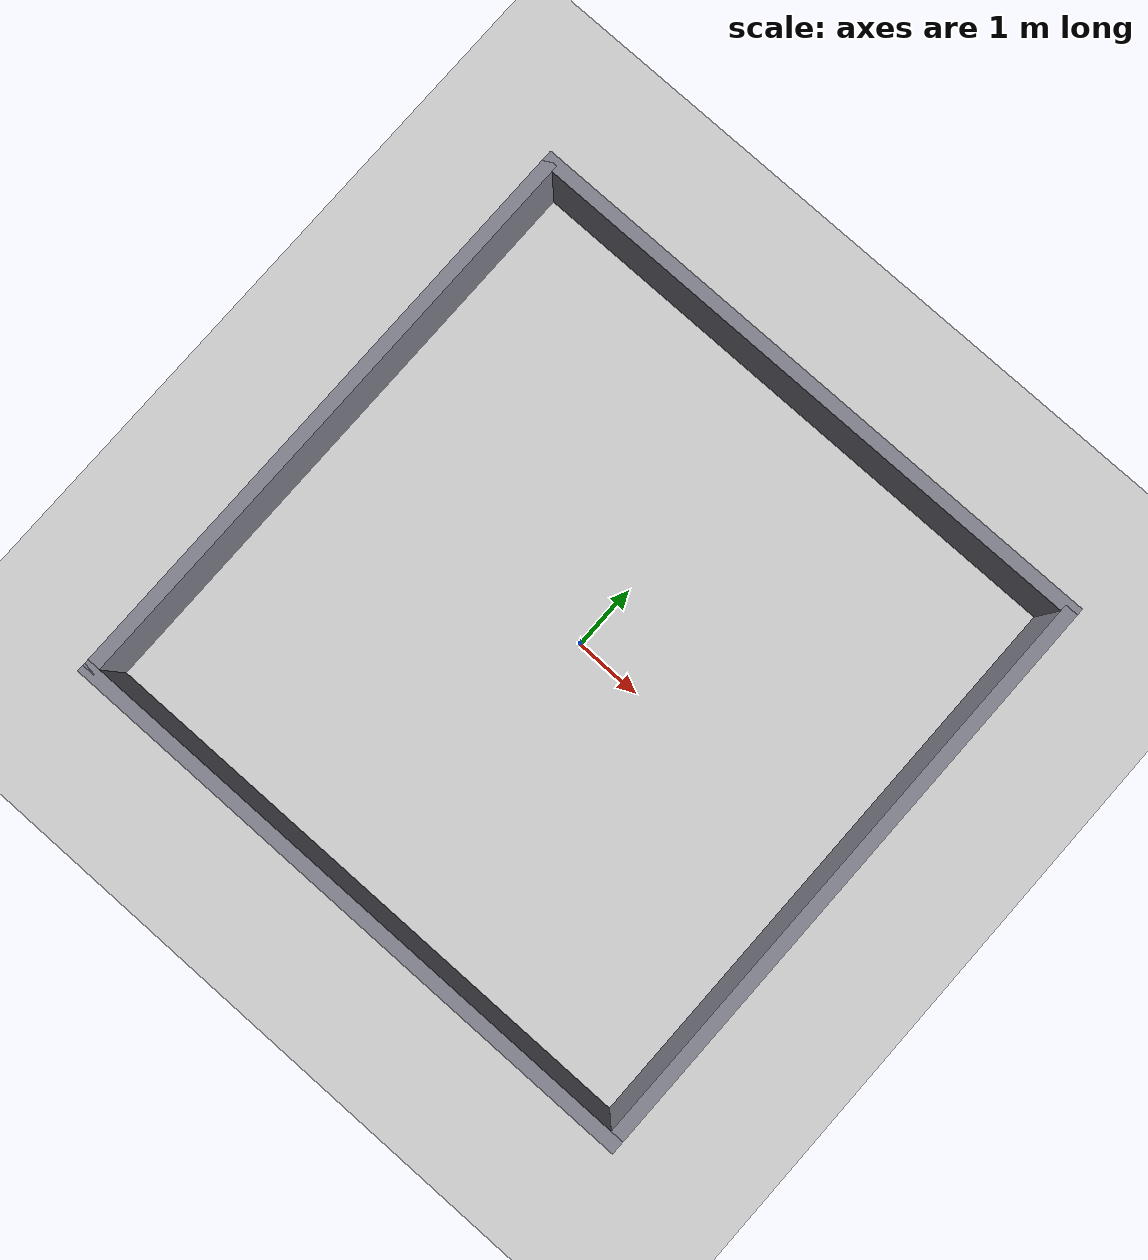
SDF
<?xml version="1.0"?>
<sdf version="1.6">
  <world name="husarion_world">
    <physics name="1ms" type="ignored">
      <max_step_size>0.001</max_step_size>
      <real_time_factor>1.0</real_time_factor>
    </physics>

    <plugin filename="gz-sim-physics-system" name="gz::sim::systems::Physics" />
    <plugin filename="gz-sim-user-commands-system" name="gz::sim::systems::UserCommands" />
    <plugin filename="gz-sim-scene-broadcaster-system" name="gz::sim::systems::SceneBroadcaster" />
    <plugin filename="gz-sim-contact-system" name="gz::sim::systems::Contact" />
    <plugin filename="gz-sim-imu-system" name="gz::sim::systems::Imu" />
    <plugin filename="gz-sim-sensors-system" name="gz::sim::systems::Sensors">
      <render_engine>ogre2</render_engine>
    </plugin>

    <light type="directional" name="sun">
      <cast_shadows>true</cast_shadows>
      <pose>0 0 10 0 0 0</pose>
      <diffuse>0.8 0.8 0.8 1</diffuse>
      <specular>0.2 0.2 0.2 1</specular>
      <attenuation>
        <range>1000</range>
        <constant>0.9</constant>
        <linear>0.01</linear>
        <quadratic>0.001</quadratic>
      </attenuation>
      <direction>-0.5 0.1 -0.9</direction>
    </light>

    <model name="ground_plane">
      <static>true</static>
      <link name="link">
        <collision name="collision">
          <geometry>
            <plane>
              <normal>0 0 1</normal>
              <size>100 100</size>
            </plane>
          </geometry>
        </collision>
        <visual name="visual">
          <geometry>
            <plane>
              <normal>0 0 1</normal>
              <size>100 100</size>
            </plane>
          </geometry>
          <material>
            <ambient>0.8 0.8 0.8 1</ambient>
            <diffuse>0.8 0.8 0.8 1</diffuse>
            <specular>0.8 0.8 0.8 1</specular>
          </material>
        </visual>
      </link>
    </model>

    <model name="wall_north">
      <static>true</static>
      <pose>0 4.5 0.5 0 0 0</pose>
      <link name="link">
        <collision name="collision"><geometry><box><size>9.2 0.2 1.0</size></box></geometry></collision>
        <visual name="visual">
          <geometry><box><size>9.2 0.2 1.0</size></box></geometry>
          <material><ambient>0.5 0.5 0.55 1</ambient><diffuse>0.5 0.5 0.55 1</diffuse></material>
        </visual>
      </link>
    </model>
    <model name="wall_south">
      <static>true</static>
      <pose>0 -4.5 0.5 0 0 0</pose>
      <link name="link">
        <collision name="collision"><geometry><box><size>9.2 0.2 1.0</size></box></geometry></collision>
        <visual name="visual">
          <geometry><box><size>9.2 0.2 1.0</size></box></geometry>
          <material><ambient>0.5 0.5 0.55 1</ambient><diffuse>0.5 0.5 0.55 1</diffuse></material>
        </visual>
      </link>
    </model>
    <model name="wall_east">
      <static>true</static>
      <pose>4.5 0 0.5 0 0 0</pose>
      <link name="link">
        <collision name="collision"><geometry><box><size>0.2 9.0 1.0</size></box></geometry></collision>
        <visual name="visual">
          <geometry><box><size>0.2 9.0 1.0</size></box></geometry>
          <material><ambient>0.5 0.5 0.55 1</ambient><diffuse>0.5 0.5 0.55 1</diffuse></material>
        </visual>
      </link>
    </model>
    <model name="wall_west">
      <static>true</static>
      <pose>-4.5 0 0.5 0 0 0</pose>
      <link name="link">
        <collision name="collision"><geometry><box><size>0.2 9.0 1.0</size></box></geometry></collision>
        <visual name="visual">
          <geometry><box><size>0.2 9.0 1.0</size></box></geometry>
          <material><ambient>0.5 0.5 0.55 1</ambient><diffuse>0.5 0.5 0.55 1</diffuse></material>
        </visual>
      </link>
    </model>
  </world>
</sdf>
